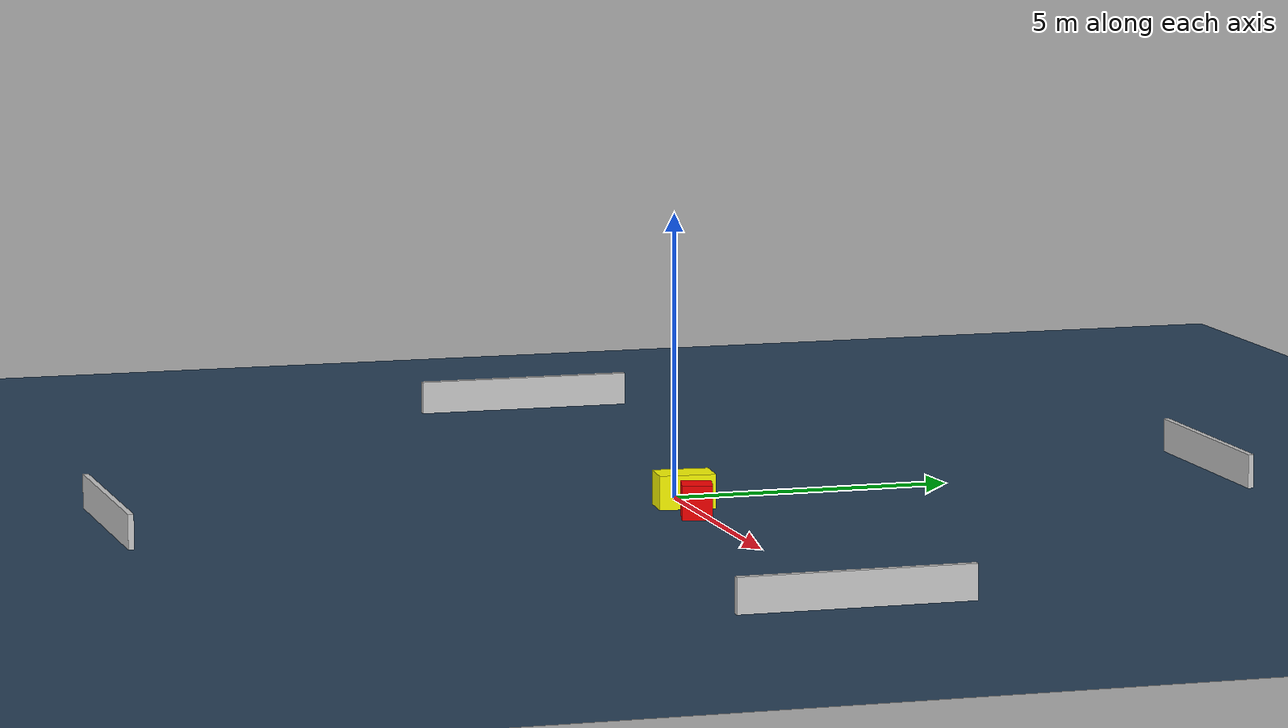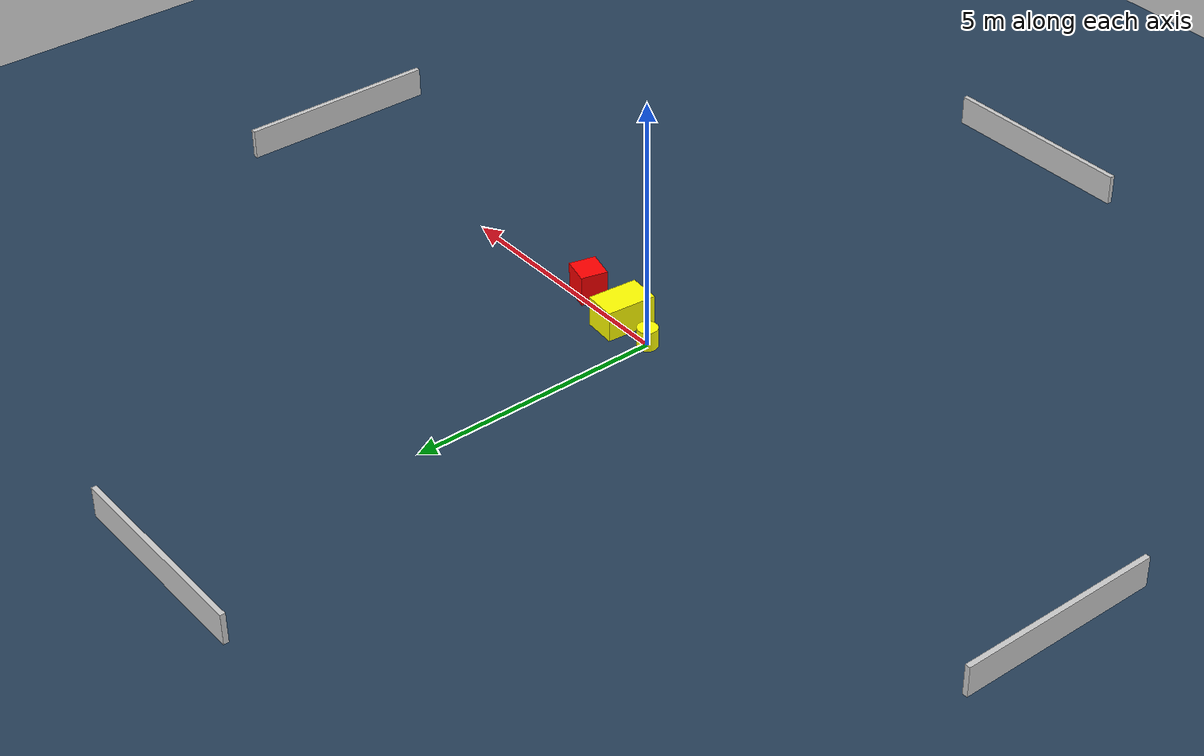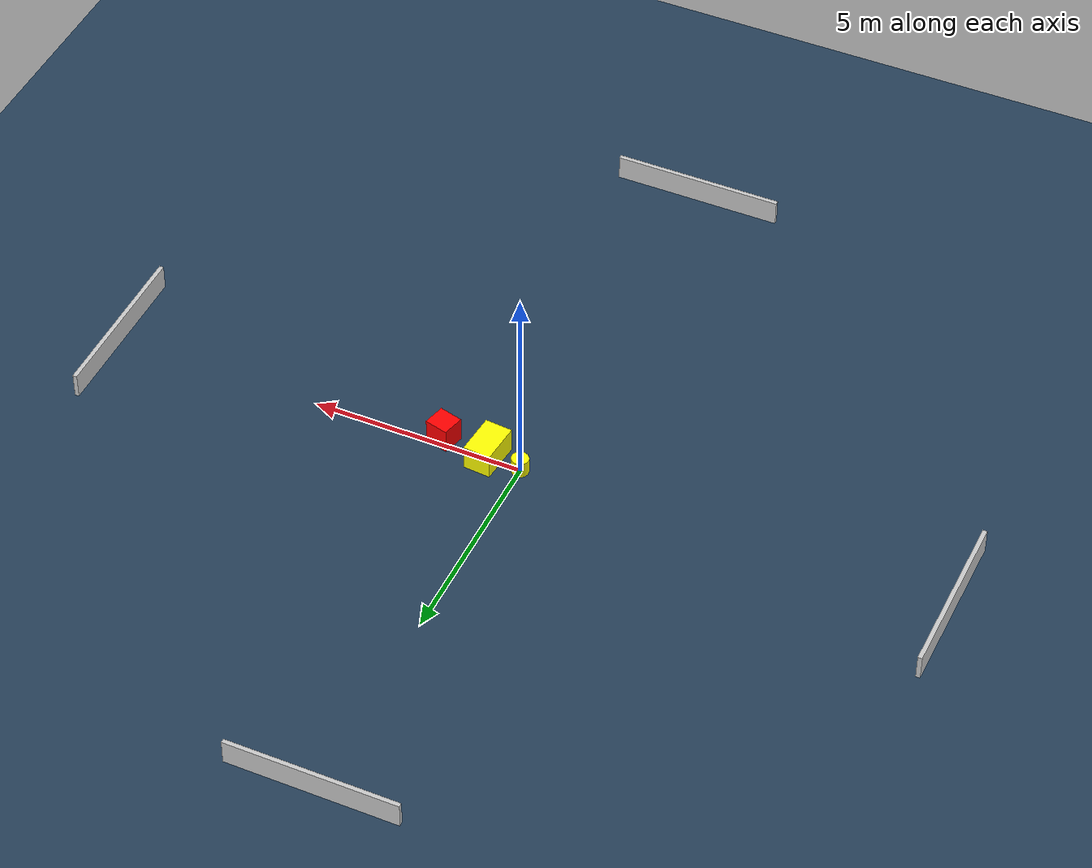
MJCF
<?xml version="1.0" ?>
<mujoco model="generated_environment">
  <option timestep="0.01" integrator="RK4" cone="elliptic"/>
  <default>
    <geom density="1"/>
  </default>
  <asset>
    <texture builtin="gradient" height="3072" name="skybox" rgb1="0.3 0.5 0.7" rgb2="0 0 0" type="skybox" width="512"/>
    <texture builtin="checker" height="300" name="groundplane" rgb1="0.2 0.3 0.4" rgb2="0.1 0.2 0.3" type="2d" width="300"/>
    <material name="groundplane" reflectance="0.2" texrepeat="5 5" texture="groundplane"/>
  </asset>
  <worldbody>
    <light dir="0 0 -1" directional="true" pos="0 0 1.5"/>
    <geom condim="3" friction="0.5 0.005 0.001" material="groundplane" name="floor" pos="0 0 0" size="0 0 0.05" type="plane"/>
    <body name="walls">
      <geom name="wall_1" condim="4" pos="-10.0 0.0 0.3" rgba="0.800000011920929 0.800000011920929 0.800000011920929 1.0" size="0.05 2.0 0.3" type="box"/>
      <geom name="wall_2" condim="4" pos="10.0 0.0 0.3" rgba="0.800000011920929 0.800000011920929 0.800000011920929 1.0" size="0.05 2.0 0.3" type="box"/>
      <geom name="wall_3" condim="4" pos="0.0 -10.0 0.3" rgba="0.800000011920929 0.800000011920929 0.800000011920929 1.0" size="2.0 0.05 0.3" type="box"/>
      <geom name="wall_4" condim="4" pos="0.0 10.0 0.3" rgba="0.800000011920929 0.800000011920929 0.800000011920929 1.0" size="2.0 0.05 0.3" type="box"/>
    </body>
    <body name="robot">
      <joint name="joint_x" type="slide" pos="0 0 0" axis="1 0 0"/>
      <joint name="joint_y" type="slide" pos="0 0 0" axis="0 1 0"/>
      <geom name="robot" type="cylinder" pos="0.0 0.0 0.2" size="0.2 0.2 0.0" mass="5.0" friction="1.0 0.005 0.0001" condim="4" rgba="1.0 1.0 0.0 1.0"/>
    </body>
    <body name="obstacle_1_movable">
      <geom name="obstacle_1_movable" condim="4" pos="0.8123098078600127 -0.0652375365629734 0.3" euler="0 0 265.13722581177205" friction="0.0 0.005 0.001" rgba="1.0 1.0 0.0 1.0" size="0.4954265170948239 0.322324973375997 0.3" type="box" mass="0.1"/>
      <joint type="free"/>
    </body>
    <body name="obstacle_2_static">
      <geom name="obstacle_2_static" condim="4" pos="1.9392603623902425 -0.1781775730972841 0.3" euler="0 0 255.55162751616223" friction="0.0 0.005 0.001" rgba="1.0 0.0 0.0 1.0" size="0.2641235580915818 0.28147929768980795 0.3" type="box"/>
    </body>
  </worldbody>
  <actuator>
    <motor name="actuator_x" joint="joint_x" gear="1" ctrlrange="-1 1"/>
    <motor name="actuator_y" joint="joint_y" gear="1" ctrlrange="-1 1"/>
  </actuator>
</mujoco>
